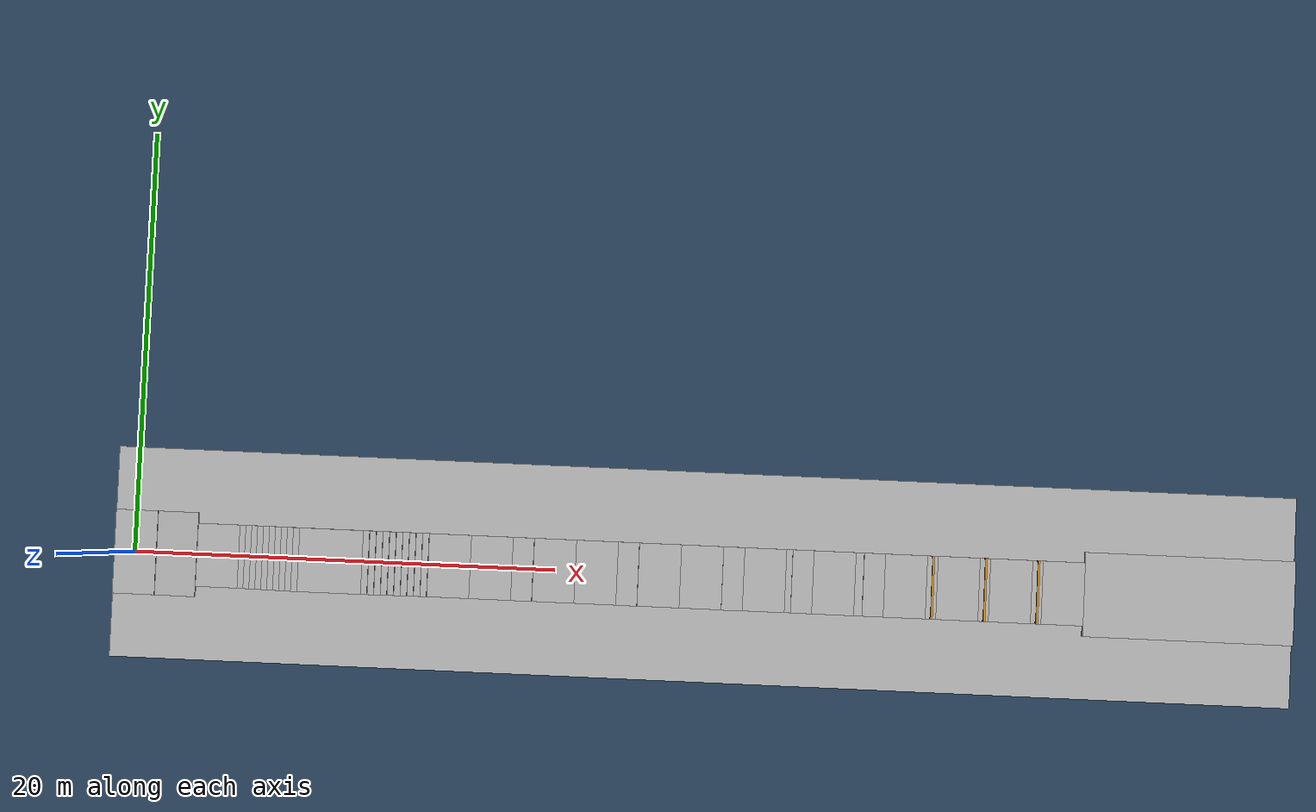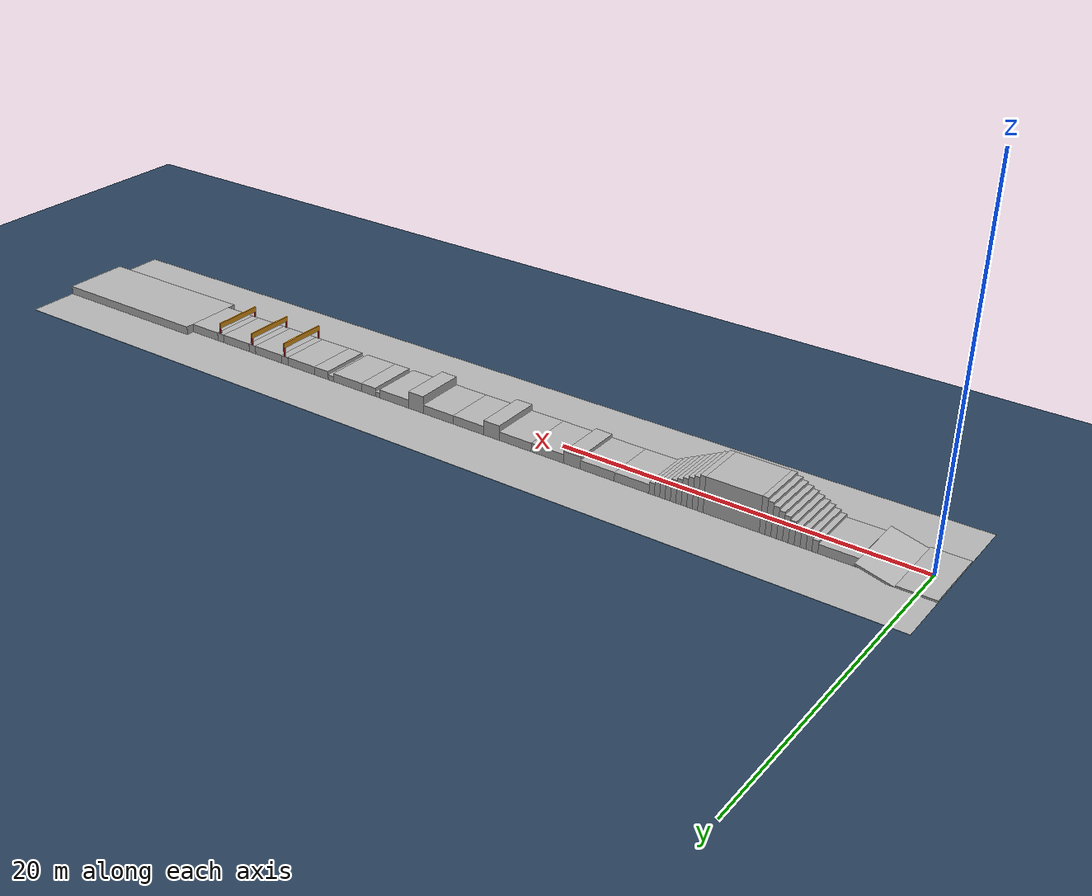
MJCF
<?xml version="1.0" ?>
<mujoco model="M20_Terrain">
  <compiler angle="degree" coordinate="local" inertiafromgeom="true"/>
  <option timestep="0.002" gravity="0 0 -9.81" iterations="50" tolerance="1e-10"/>
  <asset>
    <texture type="skybox" builtin="gradient" rgb1="0.3 0.5 0.7" rgb2="0 0 0" width="512" height="307"/>
    <texture name="grid" type="2d" builtin="checker" width="512" height="512" rgb1=".1 .2 .3" rgb2=".2 .3 .4"/>
    <material name="grid_mat" texture="grid" texrepeat="1 1" texuniform="true" reflectance=".2"/>
    <material name="stone_mat" rgba="0.7 0.7 0.7 1"/>
    <material name="rail_mat" rgba="0.8 0.2 0.2 1"/>
    <material name="box_mat" rgba="0.3 0.8 0.3 1"/>
    <material name="ring_mat" rgba="0.9 0.6 0.1 1"/>
  </asset>
  <worldbody>
    <geom name="abyss_floor" type="plane" size="0 0 0.05" pos="0 0 -5.0" material="grid_mat" condim="3"/>
    <light name="sun" mode="targetbodycom" target="abyss_floor" diffuse=".8 .8 .8" dir="0 0 -1" pos="0 0 10"/>
    <geom type="box" pos="0 0 0.060" size="1.0 2.0 0.05" material="stone_mat" name="start_platform"/>
    <geom type="box" pos="2.000 0.0 0.210" size="1.031 2.0 0.05" euler="0 -14.036 0" material="stone_mat" name="start_ramp"/>
    <geom type="box" pos="4.000 0.0 0.260" size="1.000 1.500 0.250" material="stone_mat"/>
    <geom type="box" pos="5.150 0.0 -0.415" size="0.150 1.500 1.075" material="stone_mat"/>
    <geom type="box" pos="5.450 0.0 -0.340" size="0.150 1.500 1.150" material="stone_mat"/>
    <geom type="box" pos="5.750 0.0 -0.265" size="0.150 1.500 1.225" material="stone_mat"/>
    <geom type="box" pos="6.050 0.0 -0.190" size="0.150 1.500 1.300" material="stone_mat"/>
    <geom type="box" pos="6.350 0.0 -0.115" size="0.150 1.500 1.375" material="stone_mat"/>
    <geom type="box" pos="6.650 0.0 -0.040" size="0.150 1.500 1.450" material="stone_mat"/>
    <geom type="box" pos="6.950 0.0 0.035" size="0.150 1.500 1.525" material="stone_mat"/>
    <geom type="box" pos="7.250 0.0 0.110" size="0.150 1.500 1.600" material="stone_mat"/>
    <geom type="box" pos="7.550 0.0 0.185" size="0.150 1.500 1.675" material="stone_mat"/>
    <geom type="box" pos="7.850 0.0 0.260" size="0.150 1.500 1.750" material="stone_mat"/>
    <geom type="box" pos="9.500 0.0 0.260" size="1.500 1.500 1.750" material="stone_mat"/>
    <geom type="box" pos="11.150 0.0 0.260" size="0.150 1.500 1.750" material="stone_mat"/>
    <geom type="box" pos="11.450 0.0 0.185" size="0.150 1.500 1.675" material="stone_mat"/>
    <geom type="box" pos="11.750 0.0 0.110" size="0.150 1.500 1.600" material="stone_mat"/>
    <geom type="box" pos="12.050 0.0 0.035" size="0.150 1.500 1.525" material="stone_mat"/>
    <geom type="box" pos="12.350 0.0 -0.040" size="0.150 1.500 1.450" material="stone_mat"/>
    <geom type="box" pos="12.650 0.0 -0.115" size="0.150 1.500 1.375" material="stone_mat"/>
    <geom type="box" pos="12.950 0.0 -0.190" size="0.150 1.500 1.300" material="stone_mat"/>
    <geom type="box" pos="13.250 0.0 -0.265" size="0.150 1.500 1.225" material="stone_mat"/>
    <geom type="box" pos="13.550 0.0 -0.340" size="0.150 1.500 1.150" material="stone_mat"/>
    <geom type="box" pos="13.850 0.0 -0.415" size="0.150 1.500 1.075" material="stone_mat"/>
    <geom type="box" pos="15.000 0.0 0.260" size="1.000 1.500 0.250" material="stone_mat"/>
    <geom type="box" pos="17.000 0.0 0.260" size="1.000 1.500 0.250" material="stone_mat"/>
    <geom type="box" pos="18.500 0.0 0.360" size="0.500 1.500 0.350" material="stone_mat"/>
    <geom type="box" pos="20.000 0.0 0.260" size="1.000 1.500 0.250" material="stone_mat"/>
    <geom type="box" pos="22.000 0.0 0.260" size="1.000 1.500 0.250" material="stone_mat"/>
    <geom type="box" pos="23.500 0.0 0.435" size="0.500 1.500 0.425" material="stone_mat"/>
    <geom type="box" pos="25.000 0.0 0.260" size="1.000 1.500 0.250" material="stone_mat"/>
    <geom type="box" pos="27.000 0.0 0.260" size="1.000 1.500 0.250" material="stone_mat"/>
    <geom type="box" pos="28.500 0.0 0.510" size="0.500 1.500 0.500" material="stone_mat"/>
    <geom type="box" pos="30.000 0.0 0.260" size="1.000 1.500 0.250" material="stone_mat"/>
    <geom type="box" pos="31.150 0.0 0.155" size="0.150 1.500 0.155" material="stone_mat"/>
    <geom type="box" pos="31.800 0.0 0.255" size="0.500 1.500 0.255" material="stone_mat"/>
    <geom type="box" pos="33.300 0.0 0.260" size="1.000 1.500 0.250" material="stone_mat"/>
    <geom type="box" pos="34.500 0.0 0.155" size="0.200 1.500 0.155" material="stone_mat"/>
    <geom type="box" pos="35.200 0.0 0.255" size="0.500 1.500 0.255" material="stone_mat"/>
    <geom type="box" pos="36.700 0.0 0.260" size="1.000 1.500 0.250" material="stone_mat"/>
    <geom type="box" pos="37.950 0.0 0.260" size="0.250 1.500 0.250" material="stone_mat"/>
    <geom type="box" pos="37.950 1.460 0.760" size="0.040 0.040 0.250" material="rail_mat"/>
    <geom type="box" pos="37.950 -1.460 0.760" size="0.040 0.040 0.250" material="rail_mat"/>
    <geom type="box" pos="37.950 0.0 1.160" size="0.040 1.500 0.150" material="ring_mat"/>
    <geom type="box" pos="39.200 0.0 0.260" size="1.000 1.500 0.250" material="stone_mat"/>
    <geom type="box" pos="40.450 0.0 0.260" size="0.250 1.500 0.250" material="stone_mat"/>
    <geom type="box" pos="40.450 1.460 0.710" size="0.040 0.040 0.200" material="rail_mat"/>
    <geom type="box" pos="40.450 -1.460 0.710" size="0.040 0.040 0.200" material="rail_mat"/>
    <geom type="box" pos="40.450 0.0 1.060" size="0.040 1.500 0.150" material="ring_mat"/>
    <geom type="box" pos="41.700 0.0 0.260" size="1.000 1.500 0.250" material="stone_mat"/>
    <geom type="box" pos="42.950 0.0 0.260" size="0.250 1.500 0.250" material="stone_mat"/>
    <geom type="box" pos="42.950 1.460 0.685" size="0.040 0.040 0.175" material="rail_mat"/>
    <geom type="box" pos="42.950 -1.460 0.685" size="0.040 0.040 0.175" material="rail_mat"/>
    <geom type="box" pos="42.950 0.0 1.010" size="0.040 1.500 0.150" material="ring_mat"/>
    <geom type="box" pos="44.200 0.0 0.260" size="1.000 1.500 0.250" material="stone_mat"/>
    <geom type="box" pos="50.200 0.0 0.260" size="5.0 2.0 0.250" material="stone_mat"/>
    <geom type="box" pos="27.100 0.0 0.005" size="28.100 5.0 0.005" material="stone_mat" name="unified_floor"/>
  </worldbody>
</mujoco>
